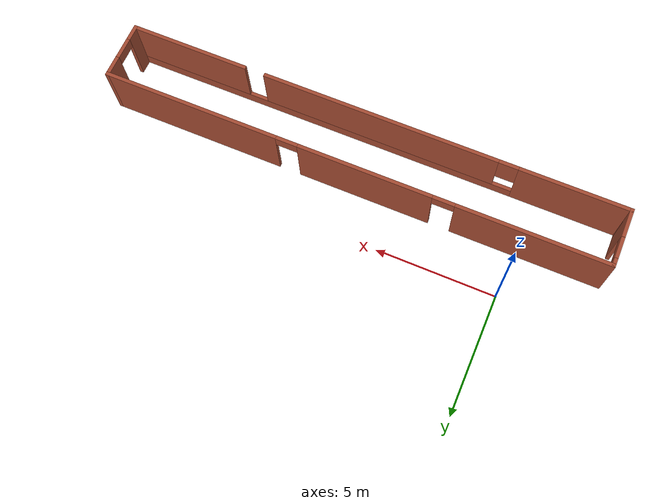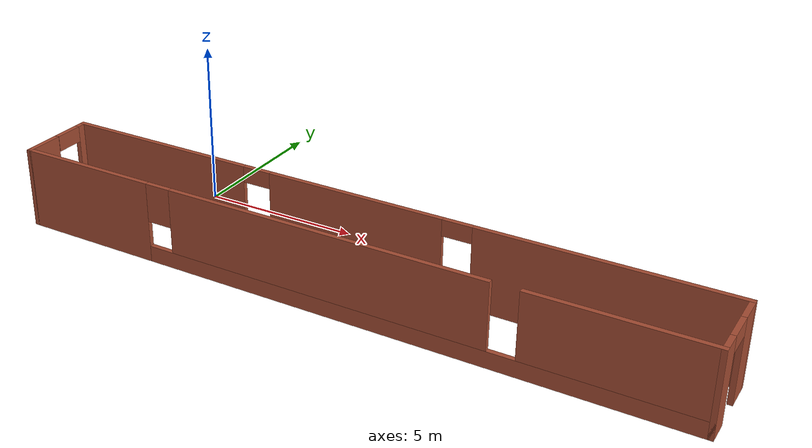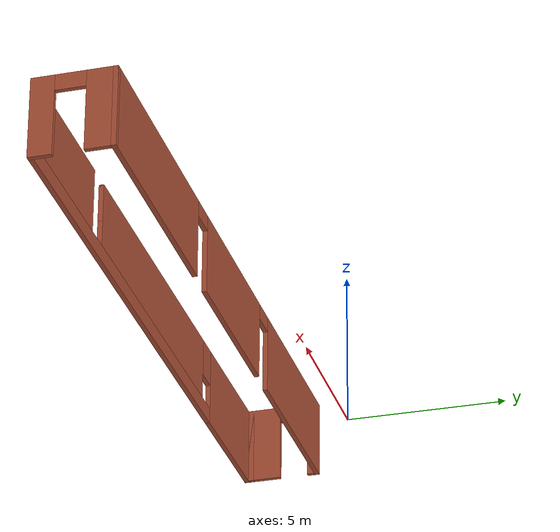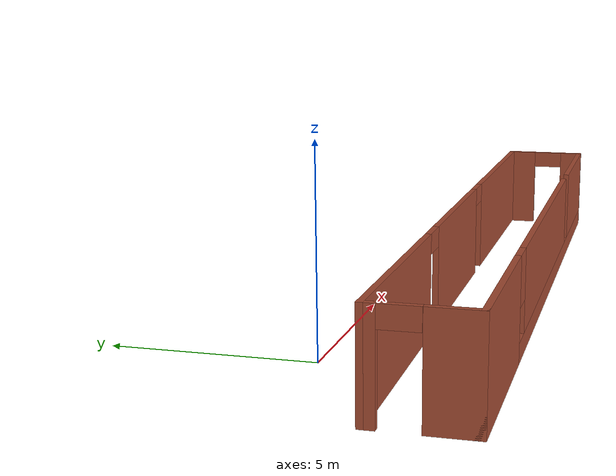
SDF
<?xml version='1.0'?>
<sdf version='1.7'>
  <model name='inner_wall'>
    <pose>6.895 -2.1825 0 0 -0 0</pose>
    <link name='Wall_0'>
      <pose>-10.425 -0.9325 0 0 -0 -1.5708</pose>
      <visual name='Wall_0_Visual_0'>
        <pose>-1.05896 0 1.25 0 -0 0</pose>
        <geometry>
          <box>
            <size>0.382078 0.15 2.5</size>
          </box>
        </geometry>
        <material>
          <script>
            <uri>file://media/materials/scripts/gazebo.material</uri>
            <name>Gazebo/Bricks</name>
          </script>
          <ambient>1 1 1 1</ambient>
        </material>
        <meta>
          <layer>0</layer>
        </meta>
      </visual>
      <collision name='Wall_0_Collision_0'>
        <geometry>
          <box>
            <size>0.382078 0.15 2.5</size>
          </box>
        </geometry>
        <pose>-1.05896 0 1.25 0 -0 0</pose>
      </collision>
      <visual name='Wall_0_Visual_1'>
        <pose>0.641039 0 1.25 0 -0 0</pose>
        <geometry>
          <box>
            <size>1.21792 0.15 2.5</size>
          </box>
        </geometry>
        <material>
          <script>
            <uri>file://media/materials/scripts/gazebo.material</uri>
            <name>Gazebo/Bricks</name>
          </script>
          <ambient>1 1 1 1</ambient>
        </material>
        <meta>
          <layer>0</layer>
        </meta>
      </visual>
      <collision name='Wall_0_Collision_1'>
        <geometry>
          <box>
            <size>1.21792 0.15 2.5</size>
          </box>
        </geometry>
        <pose>0.641039 0 1.25 0 -0 0</pose>
      </collision>
      <visual name='Wall_0_Visual_2'>
        <pose>1.08716 0 1.25 0 -0 0</pose>
        <geometry>
          <box>
            <size>0.325672 0.15 2.5</size>
          </box>
        </geometry>
        <material>
          <script>
            <uri>file://media/materials/scripts/gazebo.material</uri>
            <name>Gazebo/Bricks</name>
          </script>
          <ambient>1 1 1 1</ambient>
        </material>
        <meta>
          <layer>0</layer>
        </meta>
      </visual>
      <collision name='Wall_0_Collision_2'>
        <geometry>
          <box>
            <size>0.325672 0.15 2.5</size>
          </box>
        </geometry>
        <pose>1.08716 0 1.25 0 -0 0</pose>
      </collision>
      <visual name='Wall_0_Visual_3'>
        <pose>-0.421797 0 2.25 0 -0 0</pose>
        <geometry>
          <box>
            <size>0.89225 0.15 0.5</size>
          </box>
        </geometry>
        <material>
          <script>
            <uri>file://media/materials/scripts/gazebo.material</uri>
            <name>Gazebo/Bricks</name>
          </script>
          <ambient>1 1 1 1</ambient>
        </material>
        <meta>
          <layer>0</layer>
        </meta>
      </visual>
      <collision name='Wall_0_Collision_3'>
        <geometry>
          <box>
            <size>0.89225 0.15 0.5</size>
          </box>
        </geometry>
        <pose>-0.421797 0 2.25 0 -0 0</pose>
      </collision>
    </link>
    <link name='Wall_1'>
      <pose>-0 -2.1075 0 0 -0 0</pose>
      <visual name='Wall_1_Visual_0'>
        <pose>-8.23567 0 1.25 0 -0 0</pose>
        <geometry>
          <box>
            <size>4.52866 0.15 2.5</size>
          </box>
        </geometry>
        <material>
          <script>
            <uri>file://media/materials/scripts/gazebo.material</uri>
            <name>Gazebo/Bricks</name>
          </script>
          <ambient>1 1 1 1</ambient>
        </material>
        <meta>
          <layer>0</layer>
        </meta>
      </visual>
      <collision name='Wall_1_Collision_0'>
        <geometry>
          <box>
            <size>4.52866 0.15 2.5</size>
          </box>
        </geometry>
        <pose>-8.23567 0 1.25 0 -0 0</pose>
      </collision>
      <visual name='Wall_1_Visual_1'>
        <pose>2.26433 0 0.25 0 -0 0</pose>
        <geometry>
          <box>
            <size>16.4713 0.15 0.5</size>
          </box>
        </geometry>
        <material>
          <script>
            <uri>file://media/materials/scripts/gazebo.material</uri>
            <name>Gazebo/Bricks</name>
          </script>
          <ambient>1 1 1 1</ambient>
        </material>
        <meta>
          <layer>0</layer>
        </meta>
      </visual>
      <collision name='Wall_1_Collision_1'>
        <geometry>
          <box>
            <size>16.4713 0.15 0.5</size>
          </box>
        </geometry>
        <pose>2.26433 0 0.25 0 -0 0</pose>
      </collision>
      <visual name='Wall_1_Visual_2'>
        <pose>-0.239701 0 1.5 0 -0 0</pose>
        <geometry>
          <box>
            <size>9.86328 0.15 2</size>
          </box>
        </geometry>
        <material>
          <script>
            <uri>file://media/materials/scripts/gazebo.material</uri>
            <name>Gazebo/Bricks</name>
          </script>
          <ambient>1 1 1 1</ambient>
        </material>
        <meta>
          <layer>0</layer>
        </meta>
      </visual>
      <collision name='Wall_1_Collision_2'>
        <geometry>
          <box>
            <size>9.86328 0.15 2</size>
          </box>
        </geometry>
        <pose>-0.239701 0 1.5 0 -0 0</pose>
      </collision>
      <visual name='Wall_1_Visual_3'>
        <pose>7.99597 0 1.5 0 -0 0</pose>
        <geometry>
          <box>
            <size>5.00806 0.15 2</size>
          </box>
        </geometry>
        <material>
          <script>
            <uri>file://media/materials/scripts/gazebo.material</uri>
            <name>Gazebo/Bricks</name>
          </script>
          <ambient>1 1 1 1</ambient>
        </material>
        <meta>
          <layer>0</layer>
        </meta>
      </visual>
      <collision name='Wall_1_Collision_3'>
        <geometry>
          <box>
            <size>5.00806 0.15 2</size>
          </box>
        </geometry>
        <pose>7.99597 0 1.5 0 -0 0</pose>
      </collision>
      <visual name='Wall_1_Visual_4'>
        <pose>-5.57134 0 1.9 0 -0 0</pose>
        <geometry>
          <box>
            <size>0.8 0.15 1.2</size>
          </box>
        </geometry>
        <material>
          <script>
            <uri>file://media/materials/scripts/gazebo.material</uri>
            <name>Gazebo/Bricks</name>
          </script>
          <ambient>1 1 1 1</ambient>
        </material>
        <meta>
          <layer>0</layer>
        </meta>
      </visual>
      <collision name='Wall_1_Collision_4'>
        <geometry>
          <box>
            <size>0.8 0.15 1.2</size>
          </box>
        </geometry>
        <pose>-5.57134 0 1.9 0 -0 0</pose>
      </collision>
      <visual name='Wall_1_Visual_5'>
        <pose>4.69194 0 1.9 0 -0 0</pose>
        <geometry>
          <box>
            <size>0 0.15 1.2</size>
          </box>
        </geometry>
        <material>
          <script>
            <uri>file://media/materials/scripts/gazebo.material</uri>
            <name>Gazebo/Bricks</name>
          </script>
          <ambient>1 1 1 1</ambient>
        </material>
        <meta>
          <layer>0</layer>
        </meta>
      </visual>
      <collision name='Wall_1_Collision_5'>
        <geometry>
          <box>
            <size>0 0.15 1.2</size>
          </box>
        </geometry>
        <pose>4.69194 0 1.9 0 -0 0</pose>
      </collision>
    </link>
    <link name='Wall_2'>
      <pose>10.425 -0.9325 0 0 -0 1.5708</pose>
      <visual name='Wall_2_Visual_0'>
        <pose>-0.899236 0 1.25 0 -0 0</pose>
        <geometry>
          <box>
            <size>0.701529 0.15 2.5</size>
          </box>
        </geometry>
        <material>
          <script>
            <uri>file://media/materials/scripts/gazebo.material</uri>
            <name>Gazebo/Bricks</name>
          </script>
          <ambient>1 1 1 1</ambient>
        </material>
        <meta>
          <layer>0</layer>
        </meta>
      </visual>
      <collision name='Wall_2_Collision_0'>
        <geometry>
          <box>
            <size>0.701529 0.15 2.5</size>
          </box>
        </geometry>
        <pose>-0.899236 0 1.25 0 -0 0</pose>
      </collision>
      <visual name='Wall_2_Visual_1'>
        <pose>0.800764 0 1.25 0 -0 0</pose>
        <geometry>
          <box>
            <size>0.898471 0.15 2.5</size>
          </box>
        </geometry>
        <material>
          <script>
            <uri>file://media/materials/scripts/gazebo.material</uri>
            <name>Gazebo/Bricks</name>
          </script>
          <ambient>1 1 1 1</ambient>
        </material>
        <meta>
          <layer>0</layer>
        </meta>
      </visual>
      <collision name='Wall_2_Collision_1'>
        <geometry>
          <box>
            <size>0.898471 0.15 2.5</size>
          </box>
        </geometry>
        <pose>0.800764 0 1.25 0 -0 0</pose>
      </collision>
      <visual name='Wall_2_Visual_2'>
        <pose>-0.098471 0 2.25 0 -0 0</pose>
        <geometry>
          <box>
            <size>0.9 0.15 0.5</size>
          </box>
        </geometry>
        <material>
          <script>
            <uri>file://media/materials/scripts/gazebo.material</uri>
            <name>Gazebo/Bricks</name>
          </script>
          <ambient>1 1 1 1</ambient>
        </material>
        <meta>
          <layer>0</layer>
        </meta>
      </visual>
      <collision name='Wall_2_Collision_2'>
        <geometry>
          <box>
            <size>0.9 0.15 0.5</size>
          </box>
        </geometry>
        <pose>-0.098471 0 2.25 0 -0 0</pose>
      </collision>
    </link>
    <link name='Wall_3'>
      <pose>-0 0.2425 0 0 -0 3.14159</pose>
      <visual name='Wall_3_Visual_0'>
        <pose>-6.79736 0 1.25 0 -0 0</pose>
        <geometry>
          <box>
            <size>7.40528 0.15 2.5</size>
          </box>
        </geometry>
        <material>
          <script>
            <uri>file://media/materials/scripts/gazebo.material</uri>
            <name>Gazebo/Bricks</name>
          </script>
          <ambient>1 1 1 1</ambient>
        </material>
        <meta>
          <layer>0</layer>
        </meta>
      </visual>
      <collision name='Wall_3_Collision_0'>
        <geometry>
          <box>
            <size>7.40528 0.15 2.5</size>
          </box>
        </geometry>
        <pose>-6.79736 0 1.25 0 -0 0</pose>
      </collision>
      <visual name='Wall_3_Visual_1'>
        <pose>0.582546 0 1.25 0 -0 0</pose>
        <geometry>
          <box>
            <size>5.55454 0.15 2.5</size>
          </box>
        </geometry>
        <material>
          <script>
            <uri>file://media/materials/scripts/gazebo.material</uri>
            <name>Gazebo/Bricks</name>
          </script>
          <ambient>1 1 1 1</ambient>
        </material>
        <meta>
          <layer>0</layer>
        </meta>
      </visual>
      <collision name='Wall_3_Collision_1'>
        <geometry>
          <box>
            <size>5.55454 0.15 2.5</size>
          </box>
        </geometry>
        <pose>0.582546 0 1.25 0 -0 0</pose>
      </collision>
      <visual name='Wall_3_Visual_2'>
        <pose>7.37991 0 1.25 0 -0 0</pose>
        <geometry>
          <box>
            <size>6.24019 0.15 2.5</size>
          </box>
        </geometry>
        <material>
          <script>
            <uri>file://media/materials/scripts/gazebo.material</uri>
            <name>Gazebo/Bricks</name>
          </script>
          <ambient>1 1 1 1</ambient>
        </material>
        <meta>
          <layer>0</layer>
        </meta>
      </visual>
      <collision name='Wall_3_Collision_2'>
        <geometry>
          <box>
            <size>6.24019 0.15 2.5</size>
          </box>
        </geometry>
        <pose>7.37991 0 1.25 0 -0 0</pose>
      </collision>
      <visual name='Wall_3_Visual_3'>
        <pose>-2.64472 0 2.25 0 -0 0</pose>
        <geometry>
          <box>
            <size>0.9 0.15 0.5</size>
          </box>
        </geometry>
        <material>
          <script>
            <uri>file://media/materials/scripts/gazebo.material</uri>
            <name>Gazebo/Bricks</name>
          </script>
          <ambient>1 1 1 1</ambient>
        </material>
        <meta>
          <layer>0</layer>
        </meta>
      </visual>
      <collision name='Wall_3_Collision_3'>
        <geometry>
          <box>
            <size>0.9 0.15 0.5</size>
          </box>
        </geometry>
        <pose>-2.64472 0 2.25 0 -0 0</pose>
      </collision>
      <visual name='Wall_3_Visual_4'>
        <pose>3.80981 0 2.25 0 -0 0</pose>
        <geometry>
          <box>
            <size>0.9 0.15 0.5</size>
          </box>
        </geometry>
        <material>
          <script>
            <uri>file://media/materials/scripts/gazebo.material</uri>
            <name>Gazebo/Bricks</name>
          </script>
          <ambient>1 1 1 1</ambient>
        </material>
        <meta>
          <layer>0</layer>
        </meta>
      </visual>
      <collision name='Wall_3_Collision_4'>
        <geometry>
          <box>
            <size>0.9 0.15 0.5</size>
          </box>
        </geometry>
        <pose>3.80981 0 2.25 0 -0 0</pose>
      </collision>
    </link>
    <static>1</static>
  </model>
</sdf>
